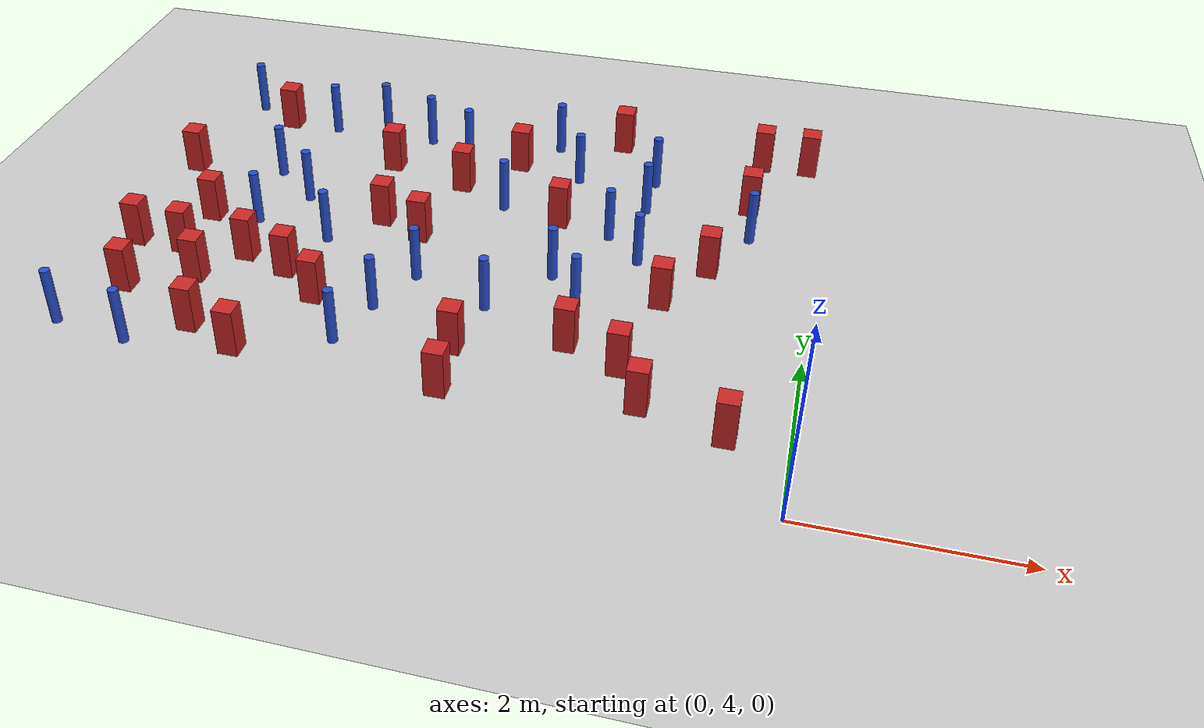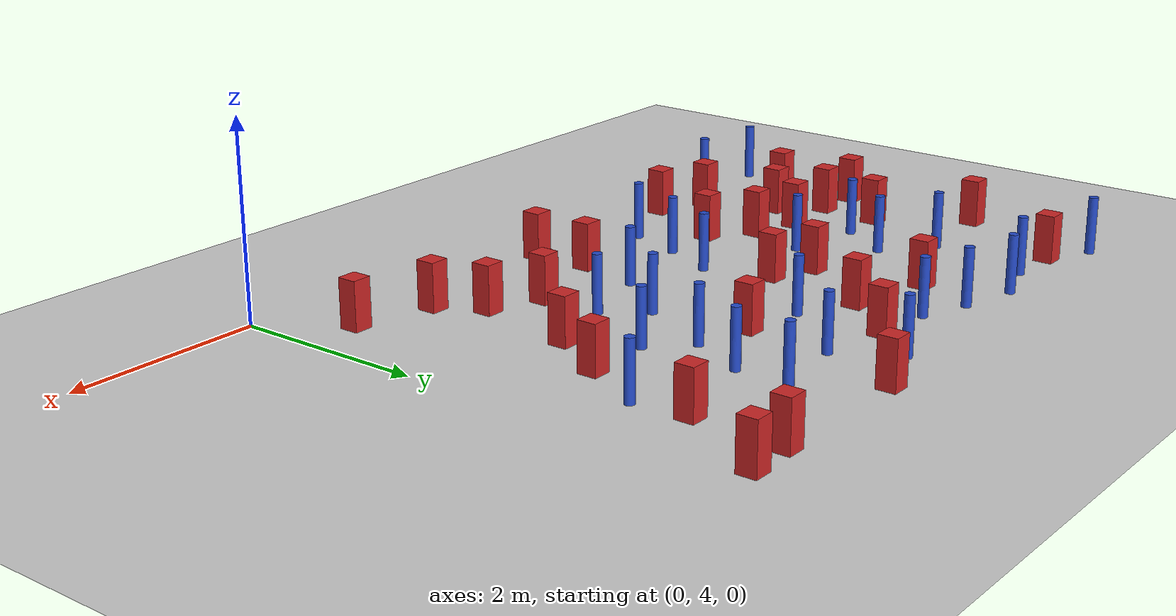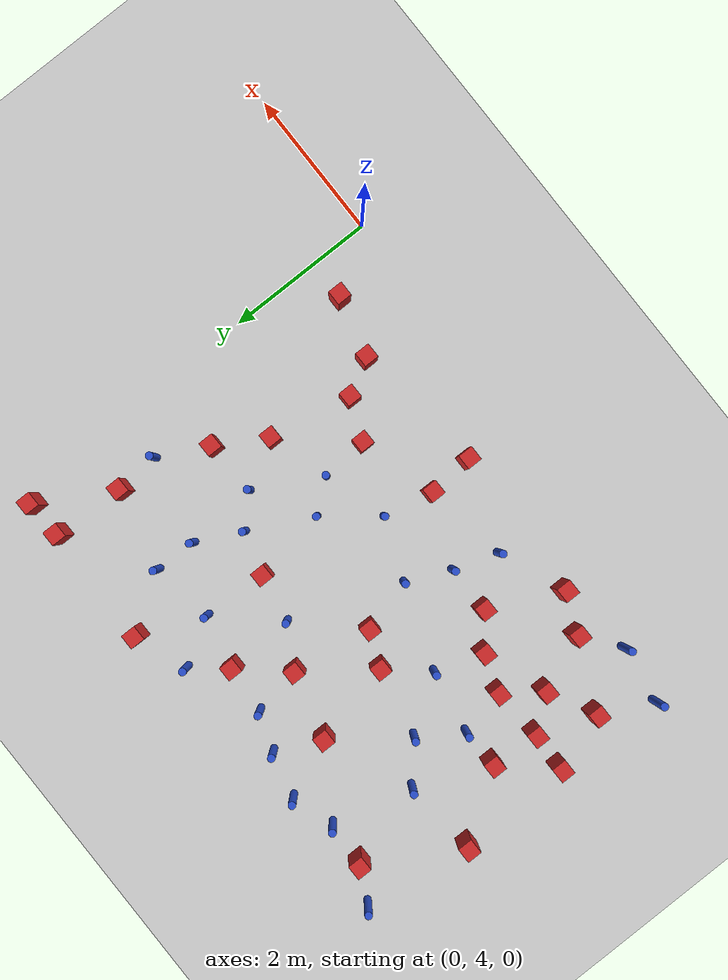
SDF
<sdf version="1.6">
 <world name="default">
  <model name="ground_plane">
   <static>1</static>
   <link name="link">
    <collision name="collision">
     <geometry><plane><normal>0 0 1</normal><size>100 100</size></plane></geometry>
     <surface><friction><ode><mu>100</mu><mu2>50</mu2></ode></friction></surface>
    </collision>
    <visual name="visual">
     <cast_shadows>0</cast_shadows>
     <geometry><plane><normal>0 0 1</normal><size>100 100</size></plane></geometry>
     <material>
      <ambient>1.0 1.0 1.0 1.0</ambient>
      <diffuse>0.8 0.8 0.8 1.0</diffuse>
      <specular>0.01 0.01 0.01 1.000000</specular>
     </material>
    </visual>
   </link>
  </model>
  <model name="square_post_obstacle8">
   <static>true</static>
   <pose>-3.87123979562 8.14785014603 8.22691968438e-08 7.22125133819e-06 -7.54495500217e-07 2.29674213826e-05</pose>
   <link name="link">
    <pose>0 0 0.25 0 -0 0</pose>
    <inertial>
     <mass>100</mass>
     <inertia>
      <ixx>0.166667</ixx>
      <ixy>0</ixy>
      <ixz>0</ixz>
      <iyy>0.166667</iyy>
      <iyz>0</iyz>
      <izz>0.166667</izz>
     </inertia>
    </inertial>
    <collision name="collision"><geometry><box><size>.2 .2 .5</size></box></geometry></collision>
    <visual name="visual">
     <geometry><box><size>.2 .2 .5</size></box></geometry>
     <material>
      <script><name>Gazebo/Red</name><uri>file://media/materials/scripts/gazebo.material</uri></script>
     </material>
    </visual>
   </link>
  </model>
  <model name="square_post_obstacle23">
   <static>true</static>
   <pose>-1.41377126461 6.57359751774 8.22691968438e-08 7.2212513382e-06 -7.54495500217e-07 2.29674213826e-05</pose>
   <link name="link">
    <pose>0 0 0.25 0 -0 0</pose>
    <inertial>
     <mass>100</mass>
     <inertia>
      <ixx>0.166667</ixx>
      <ixy>0</ixy>
      <ixz>0</ixz>
      <iyy>0.166667</iyy>
      <iyz>0</iyz>
      <izz>0.166667</izz>
     </inertia>
    </inertial>
    <collision name="collision"><geometry><box><size>.2 .2 .5</size></box></geometry></collision>
    <visual name="visual">
     <geometry><box><size>.2 .2 .5</size></box></geometry>
     <material>
      <script><name>Gazebo/Red</name><uri>file://media/materials/scripts/gazebo.material</uri></script>
     </material>
    </visual>
   </link>
  </model>
  <model name="square_post_obstacle24">
   <static>true</static>
   <pose>-2.16705652738 5.71286041331 8.22691968438e-08 7.2212513382e-06 -7.54495500217e-07 2.29674213826e-05</pose>
   <link name="link">
    <pose>0 0 0.25 0 -0 0</pose>
    <inertial>
     <mass>100</mass>
     <inertia>
      <ixx>0.166667</ixx>
      <ixy>0</ixy>
      <ixz>0</ixz>
      <iyy>0.166667</iyy>
      <iyz>0</iyz>
      <izz>0.166667</izz>
     </inertia>
    </inertial>
    <collision name="collision"><geometry><box><size>.2 .2 .5</size></box></geometry></collision>
    <visual name="visual">
     <geometry><box><size>.2 .2 .5</size></box></geometry>
     <material>
      <script><name>Gazebo/Red</name><uri>file://media/materials/scripts/gazebo.material</uri></script>
     </material>
    </visual>
   </link>
  </model>
  <model name="pole_obstacle18">
   <static>true</static>
   <pose>-1.75173360556 7.19183004723 2.88873142074e-08 -9.90536689852e-09 4.60219948989e-07 -1.2096599496e-07</pose>
   <link name="link">
    <pose>0 0 0.3 0 -0 0</pose>
    <inertial>
     <mass>1</mass>
     <inertia><ixx>0.145833</ixx><ixy>0</ixy><ixz>0</ixz><iyy>0.145833</iyy><iyz>0</iyz><izz>0.125</izz></inertia>
    </inertial>
    <collision name="collision">
     <geometry><cylinder><radius>0.05</radius><length>.6</length></cylinder></geometry>
    </collision>
    <visual name="visual">
     <geometry><cylinder><radius>0.05</radius><length>.6</length></cylinder></geometry>
     <material>
      <script><name>Gazebo/Blue</name><uri>file://media/materials/scripts/gazebo.material</uri></script>
     </material>
    </visual>
   </link>
  </model>
  <model name="square_post_obstacle28">
   <static>true</static>
   <pose>-1.36646765343 5.01895272668 8.22691968438e-08 7.2212513382e-06 -7.54495500217e-07 2.29674213826e-05</pose>
   <link name="link">
    <pose>0 0 0.25 0 -0 0</pose>
    <inertial>
     <mass>100</mass>
     <inertia>
      <ixx>0.166667</ixx>
      <ixy>0</ixy>
      <ixz>0</ixz>
      <iyy>0.166667</iyy>
      <iyz>0</iyz>
      <izz>0.166667</izz>
     </inertia>
    </inertial>
    <collision name="collision"><geometry><box><size>.2 .2 .5</size></box></geometry></collision>
    <visual name="visual">
     <geometry><box><size>.2 .2 .5</size></box></geometry>
     <material>
      <script><name>Gazebo/Red</name><uri>file://media/materials/scripts/gazebo.material</uri></script>
     </material>
    </visual>
   </link>
  </model>
  <model name="pole_obstacle22">
   <static>true</static>
   <pose>-5.10215876794 9.14936296974 2.88873142074e-08 -9.9053668967e-09 4.60219948993e-07 -1.20965994957e-07</pose>
   <link name="link">
    <pose>0 0 0.3 0 -0 0</pose>
    <inertial>
     <mass>1</mass>
     <inertia><ixx>0.145833</ixx><ixy>0</ixy><ixz>0</ixz><iyy>0.145833</iyy><iyz>0</iyz><izz>0.125</izz></inertia>
    </inertial>
    <collision name="collision">
     <geometry><cylinder><radius>0.05</radius><length>.6</length></cylinder></geometry>
    </collision>
    <visual name="visual">
     <geometry><cylinder><radius>0.05</radius><length>.6</length></cylinder></geometry>
     <material>
      <script><name>Gazebo/Blue</name><uri>file://media/materials/scripts/gazebo.material</uri></script>
     </material>
    </visual>
   </link>
  </model>
  <model name="pole_obstacle23">
   <static>true</static>
   <pose>-6.21649674147 4.74450960511 2.88873142074e-08 -9.90536690842e-09 4.60219948965e-07 -1.20965994976e-07</pose>
   <link name="link">
    <pose>0 0 0.3 0 -0 0</pose>
    <inertial>
     <mass>1</mass>
     <inertia><ixx>0.145833</ixx><ixy>0</ixy><ixz>0</ixz><iyy>0.145833</iyy><iyz>0</iyz><izz>0.125</izz></inertia>
    </inertial>
    <collision name="collision">
     <geometry><cylinder><radius>0.05</radius><length>.6</length></cylinder></geometry>
    </collision>
    <visual name="visual">
     <geometry><cylinder><radius>0.05</radius><length>.6</length></cylinder></geometry>
     <material>
      <script><name>Gazebo/Blue</name><uri>file://media/materials/scripts/gazebo.material</uri></script>
     </material>
    </visual>
   </link>
  </model>
  <model name="pole_obstacle28">
   <static>true</static>
   <pose>-4.30802512282 5.23638131901 2.88873142074e-08 -9.90536690842e-09 4.60219948965e-07 -1.20965994976e-07</pose>
   <link name="link">
    <pose>0 0 0.3 0 -0 0</pose>
    <inertial>
     <mass>1</mass>
     <inertia><ixx>0.145833</ixx><ixy>0</ixy><ixz>0</ixz><iyy>0.145833</iyy><iyz>0</iyz><izz>0.125</izz></inertia>
    </inertial>
    <collision name="collision">
     <geometry><cylinder><radius>0.05</radius><length>.6</length></cylinder></geometry>
    </collision>
    <visual name="visual">
     <geometry><cylinder><radius>0.05</radius><length>.6</length></cylinder></geometry>
     <material>
      <script><name>Gazebo/Blue</name><uri>file://media/materials/scripts/gazebo.material</uri></script>
     </material>
    </visual>
   </link>
  </model>
  <model name="pole_obstacle38">
   <static>true</static>
   <pose>-3.9932409611 8.79891876854 2.88873142074e-08 -9.90536689889e-09 4.60219948988e-07 -1.2096599496e-07</pose>
   <link name="link">
    <pose>0 0 0.3 0 -0 0</pose>
    <inertial>
     <mass>1</mass>
     <inertia><ixx>0.145833</ixx><ixy>0</ixy><ixz>0</ixz><iyy>0.145833</iyy><iyz>0</iyz><izz>0.125</izz></inertia>
    </inertial>
    <collision name="collision">
     <geometry><cylinder><radius>0.05</radius><length>.6</length></cylinder></geometry>
    </collision>
    <visual name="visual">
     <geometry><cylinder><radius>0.05</radius><length>.6</length></cylinder></geometry>
     <material>
      <script><name>Gazebo/Blue</name><uri>file://media/materials/scripts/gazebo.material</uri></script>
     </material>
    </visual>
   </link>
  </model>
  <model name="pole_obstacle42">
   <static>true</static>
   <pose>-5.80138013457 6.94755954777 2.88873142074e-08 -9.90536690842e-09 4.60219948965e-07 -1.20965994976e-07</pose>
   <link name="link">
    <pose>0 0 0.3 0 -0 0</pose>
    <inertial>
     <mass>1</mass>
     <inertia><ixx>0.145833</ixx><ixy>0</ixy><ixz>0</ixz><iyy>0.145833</iyy><iyz>0</iyz><izz>0.125</izz></inertia>
    </inertial>
    <collision name="collision">
     <geometry><cylinder><radius>0.05</radius><length>.6</length></cylinder></geometry>
    </collision>
    <visual name="visual">
     <geometry><cylinder><radius>0.05</radius><length>.6</length></cylinder></geometry>
     <material>
      <script><name>Gazebo/Blue</name><uri>file://media/materials/scripts/gazebo.material</uri></script>
     </material>
    </visual>
   </link>
  </model>
  <model name="pole_obstacle43">
   <static>true</static>
   <pose>-6.98331863687 4.85536973087 2.88873142074e-08 -9.90536690842e-09 4.60219948965e-07 -1.20965994976e-07</pose>
   <link name="link">
    <pose>0 0 0.3 0 -0 0</pose>
    <inertial>
     <mass>1</mass>
     <inertia><ixx>0.145833</ixx><ixy>0</ixy><ixz>0</ixz><iyy>0.145833</iyy><iyz>0</iyz><izz>0.125</izz></inertia>
    </inertial>
    <collision name="collision">
     <geometry><cylinder><radius>0.05</radius><length>.6</length></cylinder></geometry>
    </collision>
    <visual name="visual">
     <geometry><cylinder><radius>0.05</radius><length>.6</length></cylinder></geometry>
     <material>
      <script><name>Gazebo/Blue</name><uri>file://media/materials/scripts/gazebo.material</uri></script>
     </material>
    </visual>
   </link>
  </model>
  <model name="square_post_obstacle43">
   <static>true</static>
   <pose>-5.70740706059 5.11285370894 8.22691968438e-08 7.22125133819e-06 -7.54495500217e-07 2.29674213826e-05</pose>
   <link name="link">
    <pose>0 0 0.25 0 -0 0</pose>
    <inertial>
     <mass>100</mass>
     <inertia>
      <ixx>0.166667</ixx>
      <ixy>0</ixy>
      <ixz>0</ixz>
      <iyy>0.166667</iyy>
      <iyz>0</iyz>
      <izz>0.166667</izz>
     </inertia>
    </inertial>
    <collision name="collision"><geometry><box><size>.2 .2 .5</size></box></geometry></collision>
    <visual name="visual">
     <geometry><box><size>.2 .2 .5</size></box></geometry>
     <material>
      <script><name>Gazebo/Red</name><uri>file://media/materials/scripts/gazebo.material</uri></script>
     </material>
    </visual>
   </link>
  </model>
  <model name="square_post_obstacle48">
   <static>true</static>
   <pose>-6.30163295128 6.92934935225 8.22691968438e-08 7.2212513382e-06 -7.54495500217e-07 2.29674213826e-05</pose>
   <link name="link">
    <pose>0 0 0.25 0 -0 0</pose>
    <inertial>
     <mass>100</mass>
     <inertia>
      <ixx>0.166667</ixx>
      <ixy>0</ixy>
      <ixz>0</ixz>
      <iyy>0.166667</iyy>
      <iyz>0</iyz>
      <izz>0.166667</izz>
     </inertia>
    </inertial>
    <collision name="collision"><geometry><box><size>.2 .2 .5</size></box></geometry></collision>
    <visual name="visual">
     <geometry><box><size>.2 .2 .5</size></box></geometry>
     <material>
      <script><name>Gazebo/Red</name><uri>file://media/materials/scripts/gazebo.material</uri></script>
     </material>
    </visual>
   </link>
  </model>
  <model name="pole_obstacle48">
   <static>true</static>
   <pose>-3.00351144643 9.18514419612 2.88873142074e-08 -9.9053668994e-09 4.60219948987e-07 -1.20965994963e-07</pose>
   <link name="link">
    <pose>0 0 0.3 0 -0 0</pose>
    <inertial>
     <mass>1</mass>
     <inertia><ixx>0.145833</ixx><ixy>0</ixy><ixz>0</ixz><iyy>0.145833</iyy><iyz>0</iyz><izz>0.125</izz></inertia>
    </inertial>
    <collision name="collision">
     <geometry><cylinder><radius>0.05</radius><length>.6</length></cylinder></geometry>
    </collision>
    <visual name="visual">
     <geometry><cylinder><radius>0.05</radius><length>.6</length></cylinder></geometry>
     <material>
      <script><name>Gazebo/Blue</name><uri>file://media/materials/scripts/gazebo.material</uri></script>
     </material>
    </visual>
   </link>
  </model>
  <model name="square_post_obstacle64">
   <static>true</static>
   <pose>-4.50412024982 7.28818740726 8.22691968438e-08 7.2212513382e-06 -7.54495500217e-07 2.29674213826e-05</pose>
   <link name="link">
    <pose>0 0 0.25 0 -0 0</pose>
    <inertial>
     <mass>100</mass>
     <inertia>
      <ixx>0.166667</ixx>
      <ixy>0</ixy>
      <ixz>0</ixz>
      <iyy>0.166667</iyy>
      <iyz>0</iyz>
      <izz>0.166667</izz>
     </inertia>
    </inertial>
    <collision name="collision"><geometry><box><size>.2 .2 .5</size></box></geometry></collision>
    <visual name="visual">
     <geometry><box><size>.2 .2 .5</size></box></geometry>
     <material>
      <script><name>Gazebo/Red</name><uri>file://media/materials/scripts/gazebo.material</uri></script>
     </material>
    </visual>
   </link>
  </model>
  <model name="pole_obstacle67">
   <static>true</static>
   <pose>-2.21204736437 6.33151942068 2.88873142074e-08 -9.90536689859e-09 4.60219948989e-07 -1.20965994961e-07</pose>
   <link name="link">
    <pose>0 0 0.3 0 -0 0</pose>
    <inertial>
     <mass>1</mass>
     <inertia><ixx>0.145833</ixx><ixy>0</ixy><ixz>0</ixz><iyy>0.145833</iyy><iyz>0</iyz><izz>0.125</izz></inertia>
    </inertial>
    <collision name="collision">
     <geometry><cylinder><radius>0.05</radius><length>.6</length></cylinder></geometry>
    </collision>
    <visual name="visual">
     <geometry><cylinder><radius>0.05</radius><length>.6</length></cylinder></geometry>
     <material>
      <script><name>Gazebo/Blue</name><uri>file://media/materials/scripts/gazebo.material</uri></script>
     </material>
    </visual>
   </link>
  </model>
  <model name="pole_obstacle70">
   <static>true</static>
   <pose>-3.05599936885 6.07793754395 2.88873142074e-08 -9.90536689859e-09 4.60219948989e-07 -1.20965994961e-07</pose>
   <link name="link">
    <pose>0 0 0.3 0 -0 0</pose>
    <inertial>
     <mass>1</mass>
     <inertia><ixx>0.145833</ixx><ixy>0</ixy><ixz>0</ixz><iyy>0.145833</iyy><iyz>0</iyz><izz>0.125</izz></inertia>
    </inertial>
    <collision name="collision">
     <geometry><cylinder><radius>0.05</radius><length>.6</length></cylinder></geometry>
    </collision>
    <visual name="visual">
     <geometry><cylinder><radius>0.05</radius><length>.6</length></cylinder></geometry>
     <material>
      <script><name>Gazebo/Blue</name><uri>file://media/materials/scripts/gazebo.material</uri></script>
     </material>
    </visual>
   </link>
  </model>
  <model name="square_post_obstacle76">
   <static>true</static>
   <pose>-2.68757021264 7.71591337302 8.22691968438e-08 7.2212513382e-06 -7.54495500217e-07 2.29674213826e-05</pose>
   <link name="link">
    <pose>0 0 0.25 0 -0 0</pose>
    <inertial>
     <mass>100</mass>
     <inertia>
      <ixx>0.166667</ixx>
      <ixy>0</ixy>
      <ixz>0</ixz>
      <iyy>0.166667</iyy>
      <iyz>0</iyz>
      <izz>0.166667</izz>
     </inertia>
    </inertial>
    <collision name="collision"><geometry><box><size>.2 .2 .5</size></box></geometry></collision>
    <visual name="visual">
     <geometry><box><size>.2 .2 .5</size></box></geometry>
     <material>
      <script><name>Gazebo/Red</name><uri>file://media/materials/scripts/gazebo.material</uri></script>
     </material>
    </visual>
   </link>
  </model>
  <model name="pole_obstacle74">
   <static>true</static>
   <pose>-3.32837298247 7.83789762515 2.88873142074e-08 -9.90536692062e-09 4.60219948937e-07 -1.20965994985e-07</pose>
   <link name="link">
    <pose>0 0 0.3 0 -0 0</pose>
    <inertial>
     <mass>1</mass>
     <inertia><ixx>0.145833</ixx><ixy>0</ixy><ixz>0</ixz><iyy>0.145833</iyy><iyz>0</iyz><izz>0.125</izz></inertia>
    </inertial>
    <collision name="collision">
     <geometry><cylinder><radius>0.05</radius><length>.6</length></cylinder></geometry>
    </collision>
    <visual name="visual">
     <geometry><cylinder><radius>0.05</radius><length>.6</length></cylinder></geometry>
     <material>
      <script><name>Gazebo/Blue</name><uri>file://media/materials/scripts/gazebo.material</uri></script>
     </material>
    </visual>
   </link>
  </model>
  <model name="pole_obstacle77">
   <static>true</static>
   <pose>-4.96414372913 6.79181512294 2.88873142074e-08 -9.90536690842e-09 4.60219948965e-07 -1.20965994976e-07</pose>
   <link name="link">
    <pose>0 0 0.3 0 -0 0</pose>
    <inertial>
     <mass>1</mass>
     <inertia><ixx>0.145833</ixx><ixy>0</ixy><ixz>0</ixz><iyy>0.145833</iyy><iyz>0</iyz><izz>0.125</izz></inertia>
    </inertial>
    <collision name="collision">
     <geometry><cylinder><radius>0.05</radius><length>.6</length></cylinder></geometry>
    </collision>
    <visual name="visual">
     <geometry><cylinder><radius>0.05</radius><length>.6</length></cylinder></geometry>
     <material>
      <script><name>Gazebo/Blue</name><uri>file://media/materials/scripts/gazebo.material</uri></script>
     </material>
    </visual>
   </link>
  </model>
  <model name="pole_obstacle81">
   <static>true</static>
   <pose>-0.688845595386 7.87046730274 2.88873142074e-08 -9.90536689661e-09 4.60219948993e-07 -1.20965994957e-07</pose>
   <link name="link">
    <pose>0 0 0.3 0 -0 0</pose>
    <inertial>
     <mass>1</mass>
     <inertia><ixx>0.145833</ixx><ixy>0</ixy><ixz>0</ixz><iyy>0.145833</iyy><iyz>0</iyz><izz>0.125</izz></inertia>
    </inertial>
    <collision name="collision">
     <geometry><cylinder><radius>0.05</radius><length>.6</length></cylinder></geometry>
    </collision>
    <visual name="visual">
     <geometry><cylinder><radius>0.05</radius><length>.6</length></cylinder></geometry>
     <material>
      <script><name>Gazebo/Blue</name><uri>file://media/materials/scripts/gazebo.material</uri></script>
     </material>
    </visual>
   </link>
  </model>
  <model name="pole_obstacle82">
   <static>true</static>
   <pose>-5.92259342903 7.90526066682 2.88873142074e-08 -9.90536690842e-09 4.60219948965e-07 -1.20965994976e-07</pose>
   <link name="link">
    <pose>0 0 0.3 0 -0 0</pose>
    <inertial>
     <mass>1</mass>
     <inertia><ixx>0.145833</ixx><ixy>0</ixy><ixz>0</ixz><iyy>0.145833</iyy><iyz>0</iyz><izz>0.125</izz></inertia>
    </inertial>
    <collision name="collision">
     <geometry><cylinder><radius>0.05</radius><length>.6</length></cylinder></geometry>
    </collision>
    <visual name="visual">
     <geometry><cylinder><radius>0.05</radius><length>.6</length></cylinder></geometry>
     <material>
      <script><name>Gazebo/Blue</name><uri>file://media/materials/scripts/gazebo.material</uri></script>
     </material>
    </visual>
   </link>
  </model>
  <model name="pole_obstacle85">
   <static>true</static>
   <pose>-1.82914157974 8.15267326077 2.88873142074e-08 -9.90536690474e-09 4.60219948974e-07 -1.2096599497e-07</pose>
   <link name="link">
    <pose>0 0 0.3 0 -0 0</pose>
    <inertial>
     <mass>1</mass>
     <inertia><ixx>0.145833</ixx><ixy>0</ixy><ixz>0</ixz><iyy>0.145833</iyy><iyz>0</iyz><izz>0.125</izz></inertia>
    </inertial>
    <collision name="collision">
     <geometry><cylinder><radius>0.05</radius><length>.6</length></cylinder></geometry>
    </collision>
    <visual name="visual">
     <geometry><cylinder><radius>0.05</radius><length>.6</length></cylinder></geometry>
     <material>
      <script><name>Gazebo/Blue</name><uri>file://media/materials/scripts/gazebo.material</uri></script>
     </material>
    </visual>
   </link>
  </model>
  <model name="square_post_obstacle85">
   <static>true</static>
   <pose>-4.74776146823 8.37577477623 8.22691968438e-08 7.22125133819e-06 -7.54495500217e-07 2.29674213826e-05</pose>
   <link name="link">
    <pose>0 0 0.25 0 -0 0</pose>
    <inertial>
     <mass>100</mass>
     <inertia>
      <ixx>0.166667</ixx>
      <ixy>0</ixy>
      <ixz>0</ixz>
      <iyy>0.166667</iyy>
      <iyz>0</iyz>
      <izz>0.166667</izz>
     </inertia>
    </inertial>
    <collision name="collision"><geometry><box><size>.2 .2 .5</size></box></geometry></collision>
    <visual name="visual">
     <geometry><box><size>.2 .2 .5</size></box></geometry>
     <material>
      <script><name>Gazebo/Red</name><uri>file://media/materials/scripts/gazebo.material</uri></script>
     </material>
    </visual>
   </link>
  </model>
  <model name="square_post_obstacle88">
   <static>true</static>
   <pose>-1.03637373306 7.21348295449 8.22691968438e-08 7.2212513382e-06 -7.54495500217e-07 2.29674213826e-05</pose>
   <link name="link">
    <pose>0 0 0.25 0 -0 0</pose>
    <inertial>
     <mass>100</mass>
     <inertia>
      <ixx>0.166667</ixx>
      <ixy>0</ixy>
      <ixz>0</ixz>
      <iyy>0.166667</iyy>
      <iyz>0</iyz>
      <izz>0.166667</izz>
     </inertia>
    </inertial>
    <collision name="collision"><geometry><box><size>.2 .2 .5</size></box></geometry></collision>
    <visual name="visual">
     <geometry><box><size>.2 .2 .5</size></box></geometry>
     <material>
      <script><name>Gazebo/Red</name><uri>file://media/materials/scripts/gazebo.material</uri></script>
     </material>
    </visual>
   </link>
  </model>
  <model name="square_post_obstacle93">
   <static>true</static>
   <pose>-6.23823626994 8.99522167396 8.22691968438e-08 7.22125133819e-06 -7.54495500217e-07 2.29674213826e-05</pose>
   <link name="link">
    <pose>0 0 0.25 0 -0 0</pose>
    <inertial>
     <mass>100</mass>
     <inertia>
      <ixx>0.166667</ixx>
      <ixy>0</ixy>
      <ixz>0</ixz>
      <iyy>0.166667</iyy>
      <iyz>0</iyz>
      <izz>0.166667</izz>
     </inertia>
    </inertial>
    <collision name="collision"><geometry><box><size>.2 .2 .5</size></box></geometry></collision>
    <visual name="visual">
     <geometry><box><size>.2 .2 .5</size></box></geometry>
     <material>
      <script><name>Gazebo/Red</name><uri>file://media/materials/scripts/gazebo.material</uri></script>
     </material>
    </visual>
   </link>
  </model>
  <model name="square_post_obstacle104">
   <static>true</static>
   <pose>-4.03989704456 7.08946660278 8.22691968438e-08 7.2212513382e-06 -7.54495500217e-07 2.29674213826e-05</pose>
   <link name="link">
    <pose>0 0 0.25 0 -0 0</pose>
    <inertial>
     <mass>100</mass>
     <inertia>
      <ixx>0.166667</ixx>
      <ixy>0</ixy>
      <ixz>0</ixz>
      <iyy>0.166667</iyy>
      <iyz>0</iyz>
      <izz>0.166667</izz>
     </inertia>
    </inertial>
    <collision name="collision"><geometry><box><size>.2 .2 .5</size></box></geometry></collision>
    <visual name="visual">
     <geometry><box><size>.2 .2 .5</size></box></geometry>
     <material>
      <script><name>Gazebo/Red</name><uri>file://media/materials/scripts/gazebo.material</uri></script>
     </material>
    </visual>
   </link>
  </model>
  <model name="square_post_obstacle105">
   <static>true</static>
   <pose>-6.34682411416 6.28768914956 8.22691968438e-08 7.2212513382e-06 -7.54495500217e-07 2.29674213826e-05</pose>
   <link name="link">
    <pose>0 0 0.25 0 -0 0</pose>
    <inertial>
     <mass>100</mass>
     <inertia>
      <ixx>0.166667</ixx>
      <ixy>0</ixy>
      <ixz>0</ixz>
      <iyy>0.166667</iyy>
      <iyz>0</iyz>
      <izz>0.166667</izz>
     </inertia>
    </inertial>
    <collision name="collision"><geometry><box><size>.2 .2 .5</size></box></geometry></collision>
    <visual name="visual">
     <geometry><box><size>.2 .2 .5</size></box></geometry>
     <material>
      <script><name>Gazebo/Red</name><uri>file://media/materials/scripts/gazebo.material</uri></script>
     </material>
    </visual>
   </link>
  </model>
  <model name="pole_obstacle129">
   <static>true</static>
   <pose>-3.85532843791 6.39297857173 2.88873142074e-08 -9.90536689859e-09 4.60219948989e-07 -1.20965994961e-07</pose>
   <link name="link">
    <pose>0 0 0.3 0 -0 0</pose>
    <inertial>
     <mass>1</mass>
     <inertia><ixx>0.145833</ixx><ixy>0</ixy><ixz>0</ixz><iyy>0.145833</iyy><iyz>0</iyz><izz>0.125</izz></inertia>
    </inertial>
    <collision name="collision">
     <geometry><cylinder><radius>0.05</radius><length>.6</length></cylinder></geometry>
    </collision>
    <visual name="visual">
     <geometry><cylinder><radius>0.05</radius><length>.6</length></cylinder></geometry>
     <material>
      <script><name>Gazebo/Blue</name><uri>file://media/materials/scripts/gazebo.material</uri></script>
     </material>
    </visual>
   </link>
  </model>
  <model name="square_post_obstacle130">
   <static>true</static>
   <pose>-0.751266232748 8.44466883119 8.22691968438e-08 7.22125133819e-06 -7.54495500217e-07 2.29674213826e-05</pose>
   <link name="link">
    <pose>0 0 0.25 0 -0 0</pose>
    <inertial>
     <mass>100</mass>
     <inertia>
      <ixx>0.166667</ixx>
      <ixy>0</ixy>
      <ixz>0</ixz>
      <iyy>0.166667</iyy>
      <iyz>0</iyz>
      <izz>0.166667</izz>
     </inertia>
    </inertial>
    <collision name="collision"><geometry><box><size>.2 .2 .5</size></box></geometry></collision>
    <visual name="visual">
     <geometry><box><size>.2 .2 .5</size></box></geometry>
     <material>
      <script><name>Gazebo/Red</name><uri>file://media/materials/scripts/gazebo.material</uri></script>
     </material>
    </visual>
   </link>
  </model>
  <model name="square_post_obstacle136">
   <static>true</static>
   <pose>-2.29935533764 9.42321645243 8.22691968438e-08 7.22125133819e-06 -7.54495500217e-07 2.29674213826e-05</pose>
   <link name="link">
    <pose>0 0 0.25 0 -0 0</pose>
    <inertial>
     <mass>100</mass>
     <inertia>
      <ixx>0.166667</ixx>
      <ixy>0</ixy>
      <ixz>0</ixz>
      <iyy>0.166667</iyy>
      <iyz>0</iyz>
      <izz>0.166667</izz>
     </inertia>
    </inertial>
    <collision name="collision"><geometry><box><size>.2 .2 .5</size></box></geometry></collision>
    <visual name="visual">
     <geometry><box><size>.2 .2 .5</size></box></geometry>
     <material>
      <script><name>Gazebo/Red</name><uri>file://media/materials/scripts/gazebo.material</uri></script>
     </material>
    </visual>
   </link>
  </model>
  <model name="pole_obstacle147">
   <static>true</static>
   <pose>-6.72586584507 9.24938275932 2.88873142074e-08 -9.9053668967e-09 4.60219948993e-07 -1.20965994957e-07</pose>
   <link name="link">
    <pose>0 0 0.3 0 -0 0</pose>
    <inertial>
     <mass>1</mass>
     <inertia><ixx>0.145833</ixx><ixy>0</ixy><ixz>0</ixz><iyy>0.145833</iyy><iyz>0</iyz><izz>0.125</izz></inertia>
    </inertial>
    <collision name="collision">
     <geometry><cylinder><radius>0.05</radius><length>.6</length></cylinder></geometry>
    </collision>
    <visual name="visual">
     <geometry><cylinder><radius>0.05</radius><length>.6</length></cylinder></geometry>
     <material>
      <script><name>Gazebo/Blue</name><uri>file://media/materials/scripts/gazebo.material</uri></script>
     </material>
    </visual>
   </link>
  </model>
  <model name="square_post_obstacle144">
   <static>true</static>
   <pose>-3.14404553264 4.81008770782 8.22691968438e-08 7.2212513382e-06 -7.54495500217e-07 2.29674213826e-05</pose>
   <link name="link">
    <pose>0 0 0.25 0 -0 0</pose>
    <inertial>
     <mass>100</mass>
     <inertia>
      <ixx>0.166667</ixx>
      <ixy>0</ixy>
      <ixz>0</ixz>
      <iyy>0.166667</iyy>
      <iyz>0</iyz>
      <izz>0.166667</izz>
     </inertia>
    </inertial>
    <collision name="collision"><geometry><box><size>.2 .2 .5</size></box></geometry></collision>
    <visual name="visual">
     <geometry><box><size>.2 .2 .5</size></box></geometry>
     <material>
      <script><name>Gazebo/Red</name><uri>file://media/materials/scripts/gazebo.material</uri></script>
     </material>
    </visual>
   </link>
  </model>
  <model name="square_post_obstacle148">
   <static>true</static>
   <pose>-6.90852471205 7.81067469756 8.22691968438e-08 7.2212513382e-06 -7.54495500217e-07 2.29674213826e-05</pose>
   <link name="link">
    <pose>0 0 0.25 0 -0 0</pose>
    <inertial>
     <mass>100</mass>
     <inertia>
      <ixx>0.166667</ixx>
      <ixy>0</ixy>
      <ixz>0</ixz>
      <iyy>0.166667</iyy>
      <iyz>0</iyz>
      <izz>0.166667</izz>
     </inertia>
    </inertial>
    <collision name="collision"><geometry><box><size>.2 .2 .5</size></box></geometry></collision>
    <visual name="visual">
     <geometry><box><size>.2 .2 .5</size></box></geometry>
     <material>
      <script><name>Gazebo/Red</name><uri>file://media/materials/scripts/gazebo.material</uri></script>
     </material>
    </visual>
   </link>
  </model>
  <model name="square_post_obstacle150">
   <static>true</static>
   <pose>-4.73300323209 5.82177280668 8.22691968438e-08 7.22125133819e-06 -7.54495500217e-07 2.29674213826e-05</pose>
   <link name="link">
    <pose>0 0 0.25 0 -0 0</pose>
    <inertial>
     <mass>100</mass>
     <inertia>
      <ixx>0.166667</ixx>
      <ixy>0</ixy>
      <ixz>0</ixz>
      <iyy>0.166667</iyy>
      <iyz>0</iyz>
      <izz>0.166667</izz>
     </inertia>
    </inertial>
    <collision name="collision"><geometry><box><size>.2 .2 .5</size></box></geometry></collision>
    <visual name="visual">
     <geometry><box><size>.2 .2 .5</size></box></geometry>
     <material>
      <script><name>Gazebo/Red</name><uri>file://media/materials/scripts/gazebo.material</uri></script>
     </material>
    </visual>
   </link>
  </model>
  <model name="square_post_obstacle151">
   <static>true</static>
   <pose>-3.19228297855 5.4145057758 8.22691968438e-08 7.2212513382e-06 -7.54495500217e-07 2.29674213826e-05</pose>
   <link name="link">
    <pose>0 0 0.25 0 -0 0</pose>
    <inertial>
     <mass>100</mass>
     <inertia>
      <ixx>0.166667</ixx>
      <ixy>0</ixy>
      <ixz>0</ixz>
      <iyy>0.166667</iyy>
      <iyz>0</iyz>
      <izz>0.166667</izz>
     </inertia>
    </inertial>
    <collision name="collision"><geometry><box><size>.2 .2 .5</size></box></geometry></collision>
    <visual name="visual">
     <geometry><box><size>.2 .2 .5</size></box></geometry>
     <material>
      <script><name>Gazebo/Red</name><uri>file://media/materials/scripts/gazebo.material</uri></script>
     </material>
    </visual>
   </link>
  </model>
  <model name="pole_obstacle158">
   <static>true</static>
   <pose>-2.53471639915 6.73583701071 2.88873142074e-08 -9.90536689859e-09 4.60219948989e-07 -1.20965994961e-07</pose>
   <link name="link">
    <pose>0 0 0.3 0 -0 0</pose>
    <inertial>
     <mass>1</mass>
     <inertia><ixx>0.145833</ixx><ixy>0</ixy><ixz>0</ixz><iyy>0.145833</iyy><iyz>0</iyz><izz>0.125</izz></inertia>
    </inertial>
    <collision name="collision">
     <geometry><cylinder><radius>0.05</radius><length>.6</length></cylinder></geometry>
    </collision>
    <visual name="visual">
     <geometry><cylinder><radius>0.05</radius><length>.6</length></cylinder></geometry>
     <material>
      <script><name>Gazebo/Blue</name><uri>file://media/materials/scripts/gazebo.material</uri></script>
     </material>
    </visual>
   </link>
  </model>
  <model name="square_post_obstacle153">
   <static>true</static>
   <pose>-6.61956457189 5.53995003825 8.22691968438e-08 7.2212513382e-06 -7.54495500217e-07 2.29674213826e-05</pose>
   <link name="link">
    <pose>0 0 0.25 0 -0 0</pose>
    <inertial>
     <mass>100</mass>
     <inertia>
      <ixx>0.166667</ixx>
      <ixy>0</ixy>
      <ixz>0</ixz>
      <iyy>0.166667</iyy>
      <iyz>0</iyz>
      <izz>0.166667</izz>
     </inertia>
    </inertial>
    <collision name="collision"><geometry><box><size>.2 .2 .5</size></box></geometry></collision>
    <visual name="visual">
     <geometry><box><size>.2 .2 .5</size></box></geometry>
     <material>
      <script><name>Gazebo/Red</name><uri>file://media/materials/scripts/gazebo.material</uri></script>
     </material>
    </visual>
   </link>
  </model>
  <model name="pole_obstacle166">
   <static>true</static>
   <pose>-1.81596902812 8.70613713443 2.88873142074e-08 -9.90536690474e-09 4.60219948974e-07 -1.2096599497e-07</pose>
   <link name="link">
    <pose>0 0 0.3 0 -0 0</pose>
    <inertial>
     <mass>1</mass>
     <inertia><ixx>0.145833</ixx><ixy>0</ixy><ixz>0</ixz><iyy>0.145833</iyy><iyz>0</iyz><izz>0.125</izz></inertia>
    </inertial>
    <collision name="collision">
     <geometry><cylinder><radius>0.05</radius><length>.6</length></cylinder></geometry>
    </collision>
    <visual name="visual">
     <geometry><cylinder><radius>0.05</radius><length>.6</length></cylinder></geometry>
     <material>
      <script><name>Gazebo/Blue</name><uri>file://media/materials/scripts/gazebo.material</uri></script>
     </material>
    </visual>
   </link>
  </model>
  <model name="square_post_obstacle160">
   <static>true</static>
   <pose>-1.62552077361 5.48397573424 8.22691968438e-08 7.2212513382e-06 -7.54495500217e-07 2.29674213826e-05</pose>
   <link name="link">
    <pose>0 0 0.25 0 -0 0</pose>
    <inertial>
     <mass>100</mass>
     <inertia>
      <ixx>0.166667</ixx>
      <ixy>0</ixy>
      <ixz>0</ixz>
      <iyy>0.166667</iyy>
      <iyz>0</iyz>
      <izz>0.166667</izz>
     </inertia>
    </inertial>
    <collision name="collision"><geometry><box><size>.2 .2 .5</size></box></geometry></collision>
    <visual name="visual">
     <geometry><box><size>.2 .2 .5</size></box></geometry>
     <material>
      <script><name>Gazebo/Red</name><uri>file://media/materials/scripts/gazebo.material</uri></script>
     </material>
    </visual>
   </link>
  </model>
  <model name="pole_obstacle168">
   <static>true</static>
   <pose>-4.49818386401 8.99021785994 2.88873142074e-08 -9.9053668967e-09 4.60219948993e-07 -1.20965994957e-07</pose>
   <link name="link">
    <pose>0 0 0.3 0 -0 0</pose>
    <inertial>
     <mass>1</mass>
     <inertia><ixx>0.145833</ixx><ixy>0</ixy><ixz>0</ixz><iyy>0.145833</iyy><iyz>0</iyz><izz>0.125</izz></inertia>
    </inertial>
    <collision name="collision">
     <geometry><cylinder><radius>0.05</radius><length>.6</length></cylinder></geometry>
    </collision>
    <visual name="visual">
     <geometry><cylinder><radius>0.05</radius><length>.6</length></cylinder></geometry>
     <material>
      <script><name>Gazebo/Blue</name><uri>file://media/materials/scripts/gazebo.material</uri></script>
     </material>
    </visual>
   </link>
  </model>
  <model name="pole_obstacle174">
   <static>true</static>
   <pose>-4.11417804189 5.82011617856 2.88873142074e-08 -9.90536690842e-09 4.60219948965e-07 -1.20965994976e-07</pose>
   <link name="link">
    <pose>0 0 0.3 0 -0 0</pose>
    <inertial>
     <mass>1</mass>
     <inertia><ixx>0.145833</ixx><ixy>0</ixy><ixz>0</ixz><iyy>0.145833</iyy><iyz>0</iyz><izz>0.125</izz></inertia>
    </inertial>
    <collision name="collision">
     <geometry><cylinder><radius>0.05</radius><length>.6</length></cylinder></geometry>
    </collision>
    <visual name="visual">
     <geometry><cylinder><radius>0.05</radius><length>.6</length></cylinder></geometry>
     <material>
      <script><name>Gazebo/Blue</name><uri>file://media/materials/scripts/gazebo.material</uri></script>
     </material>
    </visual>
   </link>
  </model>
  <model name="square_post_obstacle165">
   <static>true</static>
   <pose>-6.86408595719 6.30498944855 8.22691968438e-08 7.22125133819e-06 -7.54495500217e-07 2.29674213826e-05</pose>
   <link name="link">
    <pose>0 0 0.25 0 -0 0</pose>
    <inertial>
     <mass>100</mass>
     <inertia>
      <ixx>0.166667</ixx>
      <ixy>0</ixy>
      <ixz>0</ixz>
      <iyy>0.166667</iyy>
      <iyz>0</iyz>
      <izz>0.166667</izz>
     </inertia>
    </inertial>
    <collision name="collision"><geometry><box><size>.2 .2 .5</size></box></geometry></collision>
    <visual name="visual">
     <geometry><box><size>.2 .2 .5</size></box></geometry>
     <material>
      <script><name>Gazebo/Red</name><uri>file://media/materials/scripts/gazebo.material</uri></script>
     </material>
    </visual>
   </link>
  </model>
  <model name="pole_obstacle179">
   <static>true</static>
   <pose>-2.65333439769 8.57720884542 2.88873142074e-08 -9.90536692318e-09 4.6021994893e-07 -1.20965994988e-07</pose>
   <link name="link">
    <pose>0 0 0.3 0 -0 0</pose>
    <inertial>
     <mass>1</mass>
     <inertia><ixx>0.145833</ixx><ixy>0</ixy><ixz>0</ixz><iyy>0.145833</iyy><iyz>0</iyz><izz>0.125</izz></inertia>
    </inertial>
    <collision name="collision">
     <geometry><cylinder><radius>0.05</radius><length>.6</length></cylinder></geometry>
    </collision>
    <visual name="visual">
     <geometry><cylinder><radius>0.05</radius><length>.6</length></cylinder></geometry>
     <material>
      <script><name>Gazebo/Blue</name><uri>file://media/materials/scripts/gazebo.material</uri></script>
     </material>
    </visual>
   </link>
  </model>
  <model name="square_post_obstacle181">
   <static>true</static>
   <pose>-0.706805892783 9.39334682709 8.22691968438e-08 7.22125133819e-06 -7.54495500217e-07 2.29674213826e-05</pose>
   <link name="link">
    <pose>0 0 0.25 0 -0 0</pose>
    <inertial>
     <mass>100</mass>
     <inertia>
      <ixx>0.166667</ixx>
      <ixy>0</ixy>
      <ixz>0</ixz>
      <iyy>0.166667</iyy>
      <iyz>0</iyz>
      <izz>0.166667</izz>
     </inertia>
    </inertial>
    <collision name="collision"><geometry><box><size>.2 .2 .5</size></box></geometry></collision>
    <visual name="visual">
     <geometry><box><size>.2 .2 .5</size></box></geometry>
     <material>
      <script><name>Gazebo/Red</name><uri>file://media/materials/scripts/gazebo.material</uri></script>
     </material>
    </visual>
   </link>
  </model>
  <model name="square_post_obstacle182">
   <static>true</static>
   <pose>-5.17628381051 4.88598938641 8.22691968438e-08 7.2212513382e-06 -7.54495500217e-07 2.29674213826e-05</pose>
   <link name="link">
    <pose>0 0 0.25 0 -0 0</pose>
    <inertial>
     <mass>100</mass>
     <inertia>
      <ixx>0.166667</ixx>
      <ixy>0</ixy>
      <ixz>0</ixz>
      <iyy>0.166667</iyy>
      <iyz>0</iyz>
      <izz>0.166667</izz>
     </inertia>
    </inertial>
    <collision name="collision"><geometry><box><size>.2 .2 .5</size></box></geometry></collision>
    <visual name="visual">
     <geometry><box><size>.2 .2 .5</size></box></geometry>
     <material>
      <script><name>Gazebo/Red</name><uri>file://media/materials/scripts/gazebo.material</uri></script>
     </material>
    </visual>
   </link>
  </model>
  <model name="square_post_obstacle197">
   <static>true</static>
   <pose>-0.204058279809 9.41709651345 8.22691968438e-08 7.22125133819e-06 -7.54495500217e-07 2.29674213826e-05</pose>
   <link name="link">
    <pose>0 0 0.25 0 -0 0</pose>
    <inertial>
     <mass>100</mass>
     <inertia>
      <ixx>0.166667</ixx>
      <ixy>0</ixy>
      <ixz>0</ixz>
      <iyy>0.166667</iyy>
      <iyz>0</iyz>
      <izz>0.166667</izz>
     </inertia>
    </inertial>
    <collision name="collision"><geometry><box><size>.2 .2 .5</size></box></geometry></collision>
    <visual name="visual">
     <geometry><box><size>.2 .2 .5</size></box></geometry>
     <material>
      <script><name>Gazebo/Red</name><uri>file://media/materials/scripts/gazebo.material</uri></script>
     </material>
    </visual>
   </link>
  </model>
  <model name="square_post_obstacle201">
   <static>true</static>
   <pose>-5.65596425173 6.32869875713 8.22691968438e-08 7.2212513382e-06 -7.54495500217e-07 2.29674213826e-05</pose>
   <link name="link">
    <pose>0 0 0.25 0 -0 0</pose>
    <inertial>
     <mass>100</mass>
     <inertia>
      <ixx>0.166667</ixx>
      <ixy>0</ixy>
      <ixz>0</ixz>
      <iyy>0.166667</iyy>
      <iyz>0</iyz>
      <izz>0.166667</izz>
     </inertia>
    </inertial>
    <collision name="collision"><geometry><box><size>.2 .2 .5</size></box></geometry></collision>
    <visual name="visual">
     <geometry><box><size>.2 .2 .5</size></box></geometry>
     <material>
      <script><name>Gazebo/Red</name><uri>file://media/materials/scripts/gazebo.material</uri></script>
     </material>
    </visual>
   </link>
  </model>
  <model name="square_post_obstacle202">
   <static>true</static>
   <pose>-3.35359597376 8.72739868586 8.22691968438e-08 7.22125133819e-06 -7.54495500217e-07 2.29674213826e-05</pose>
   <link name="link">
    <pose>0 0 0.25 0 -0 0</pose>
    <inertial>
     <mass>100</mass>
     <inertia>
      <ixx>0.166667</ixx>
      <ixy>0</ixy>
      <ixz>0</ixz>
      <iyy>0.166667</iyy>
      <iyz>0</iyz>
      <izz>0.166667</izz>
     </inertia>
    </inertial>
    <collision name="collision"><geometry><box><size>.2 .2 .5</size></box></geometry></collision>
    <visual name="visual">
     <geometry><box><size>.2 .2 .5</size></box></geometry>
     <material>
      <script><name>Gazebo/Red</name><uri>file://media/materials/scripts/gazebo.material</uri></script>
     </material>
    </visual>
   </link>
  </model>
  <model name="square_post_obstacle209">
   <static>true</static>
   <pose>-0.564358721817 4.80512727378 8.22691968438e-08 7.2212513382e-06 -7.54495500217e-07 2.29674213826e-05</pose>
   <link name="link">
    <pose>0 0 0.25 0 -0 0</pose>
    <inertial>
     <mass>100</mass>
     <inertia>
      <ixx>0.166667</ixx>
      <ixy>0</ixy>
      <ixz>0</ixz>
      <iyy>0.166667</iyy>
      <iyz>0</iyz>
      <izz>0.166667</izz>
     </inertia>
    </inertial>
    <collision name="collision"><geometry><box><size>.2 .2 .5</size></box></geometry></collision>
    <visual name="visual">
     <geometry><box><size>.2 .2 .5</size></box></geometry>
     <material>
      <script><name>Gazebo/Red</name><uri>file://media/materials/scripts/gazebo.material</uri></script>
     </material>
    </visual>
   </link>
  </model>
  <model name="pole_obstacle192">
   <static>true</static>
   <pose>-5.67064408768 8.97388140793 2.88873142074e-08 -9.9053668967e-09 4.60219948993e-07 -1.20965994957e-07</pose>
   <link name="link">
    <pose>0 0 0.3 0 -0 0</pose>
    <inertial>
     <mass>1</mass>
     <inertia><ixx>0.145833</ixx><ixy>0</ixy><ixz>0</ixz><iyy>0.145833</iyy><iyz>0</iyz><izz>0.125</izz></inertia>
    </inertial>
    <collision name="collision">
     <geometry><cylinder><radius>0.05</radius><length>.6</length></cylinder></geometry>
    </collision>
    <visual name="visual">
     <geometry><cylinder><radius>0.05</radius><length>.6</length></cylinder></geometry>
     <material>
      <script><name>Gazebo/Blue</name><uri>file://media/materials/scripts/gazebo.material</uri></script>
     </material>
    </visual>
   </link>
  </model>
  <model name="pole_obstacle201">
   <static>true</static>
   <pose>-5.43583968345 7.48981957561 2.88873142074e-08 -9.90536690842e-09 4.60219948965e-07 -1.20965994976e-07</pose>
   <link name="link">
    <pose>0 0 0.3 0 -0 0</pose>
    <inertial>
     <mass>1</mass>
     <inertia><ixx>0.145833</ixx><ixy>0</ixy><ixz>0</ixz><iyy>0.145833</iyy><iyz>0</iyz><izz>0.125</izz></inertia>
    </inertial>
    <collision name="collision">
     <geometry><cylinder><radius>0.05</radius><length>.6</length></cylinder></geometry>
    </collision>
    <visual name="visual">
     <geometry><cylinder><radius>0.05</radius><length>.6</length></cylinder></geometry>
     <material>
      <script><name>Gazebo/Blue</name><uri>file://media/materials/scripts/gazebo.material</uri></script>
     </material>
    </visual>
   </link>
  </model>
  <model name="pole_obstacle204">
   <static>true</static>
   <pose>-2.11858278236 7.55887497336 2.88873142074e-08 -9.90536689859e-09 4.60219948989e-07 -1.20965994961e-07</pose>
   <link name="link">
    <pose>0 0 0.3 0 -0 0</pose>
    <inertial>
     <mass>1</mass>
     <inertia><ixx>0.145833</ixx><ixy>0</ixy><ixz>0</ixz><iyy>0.145833</iyy><iyz>0</iyz><izz>0.125</izz></inertia>
    </inertial>
    <collision name="collision">
     <geometry><cylinder><radius>0.05</radius><length>.6</length></cylinder></geometry>
    </collision>
    <visual name="visual">
     <geometry><cylinder><radius>0.05</radius><length>.6</length></cylinder></geometry>
     <material>
      <script><name>Gazebo/Blue</name><uri>file://media/materials/scripts/gazebo.material</uri></script>
     </material>
    </visual>
   </link>
  </model>
  <model name="square_post_obstacle227">
   <static>true</static>
   <pose>-6.00043996738 5.85815996466 8.22691968438e-08 7.22125133819e-06 -7.54495500217e-07 2.29674213826e-05</pose>
   <link name="link">
    <pose>0 0 0.25 0 -0 0</pose>
    <inertial>
     <mass>100</mass>
     <inertia>
      <ixx>0.166667</ixx>
      <ixy>0</ixy>
      <ixz>0</ixz>
      <iyy>0.166667</iyy>
      <iyz>0</iyz>
      <izz>0.166667</izz>
     </inertia>
    </inertial>
    <collision name="collision"><geometry><box><size>.2 .2 .5</size></box></geometry></collision>
    <visual name="visual">
     <geometry><box><size>.2 .2 .5</size></box></geometry>
     <material>
      <script><name>Gazebo/Red</name><uri>file://media/materials/scripts/gazebo.material</uri></script>
     </material>
    </visual>
   </link>
  </model>
  <model name="square_post_obstacle230">
   <static>true</static>
   <pose>-5.15785996738 6.15881996466 8.22691968438e-08 7.22125133819e-06 -7.54495500217e-07 2.29674213826e-05</pose>
   <link name="link">
    <pose>0 0 0.25 0 -0 0</pose>
    <inertial>
     <mass>100</mass>
     <inertia>
      <ixx>0.166667</ixx>
      <ixy>0</ixy>
      <ixz>0</ixz>
      <iyy>0.166667</iyy>
      <iyz>0</iyz>
      <izz>0.166667</izz>
     </inertia>
    </inertial>
    <collision name="collision"><geometry><box><size>.2 .2 .5</size></box></geometry></collision>
    <visual name="visual">
     <geometry><box><size>.2 .2 .5</size></box></geometry>
     <material>
      <script><name>Gazebo/Red</name><uri>file://media/materials/scripts/gazebo.material</uri></script>
     </material>
    </visual>
   </link>
  </model>
 </world>
</sdf>
